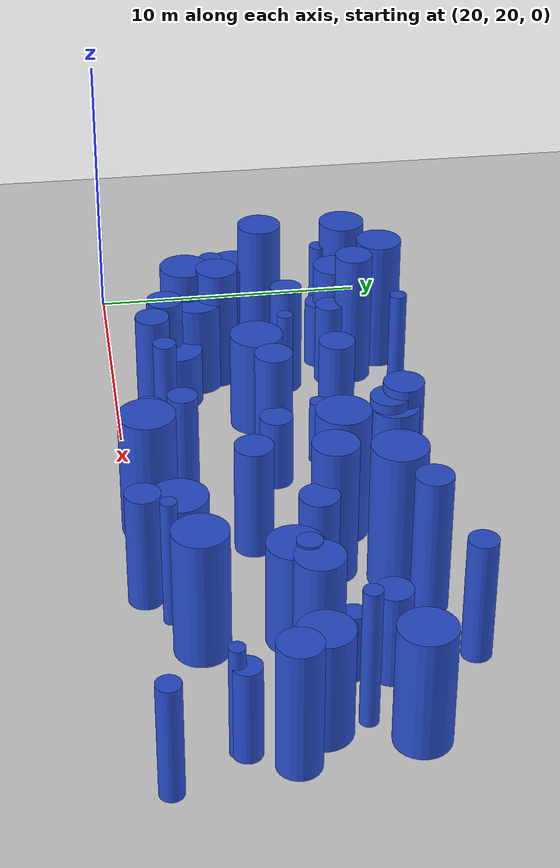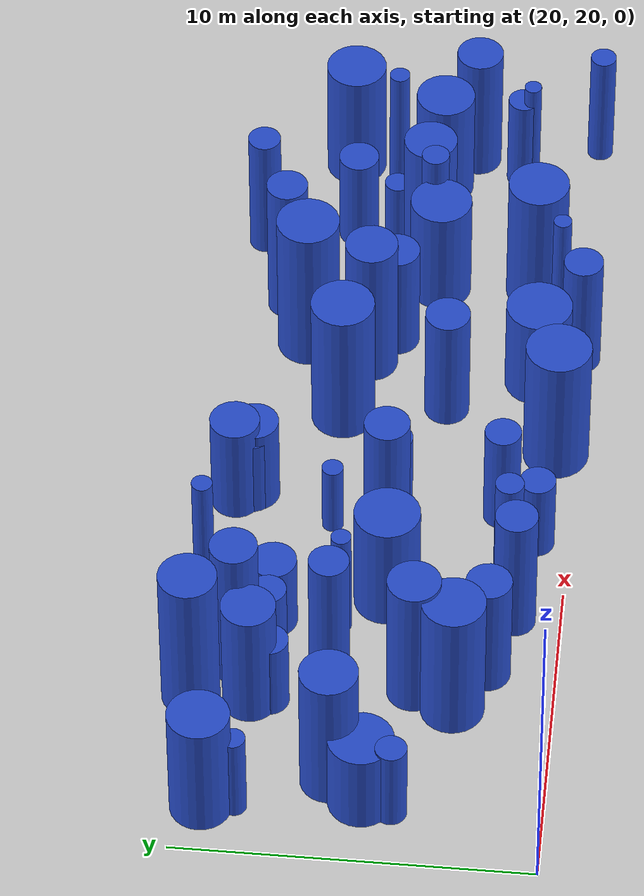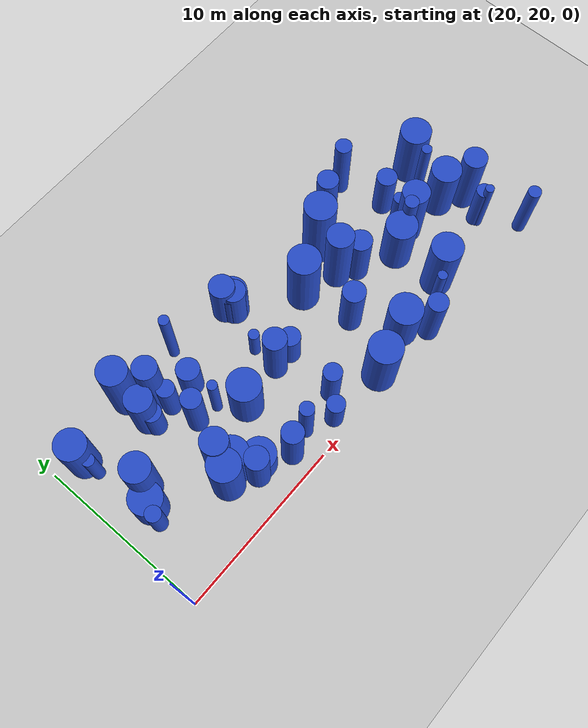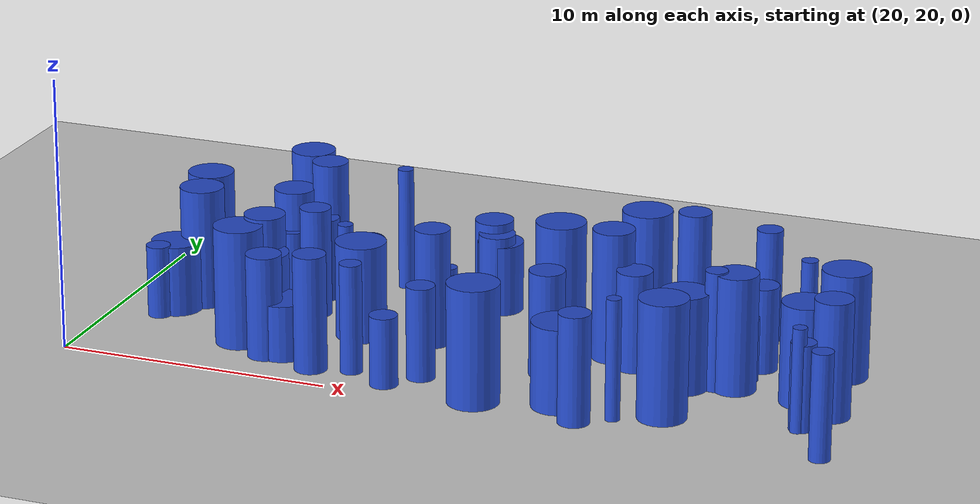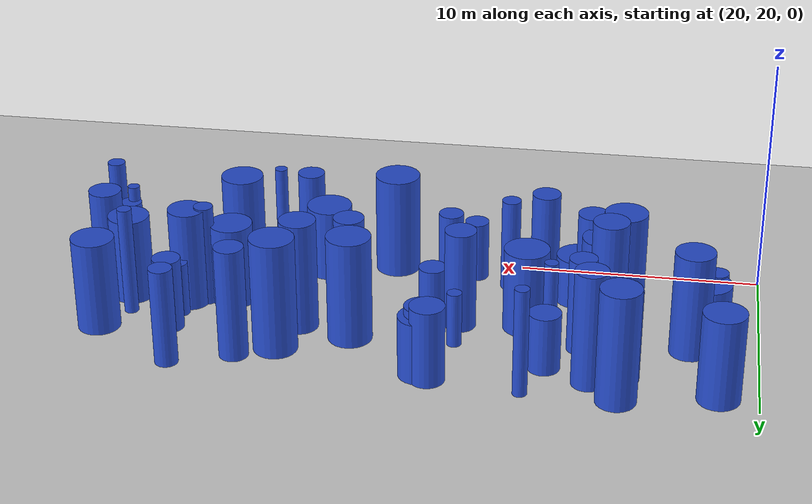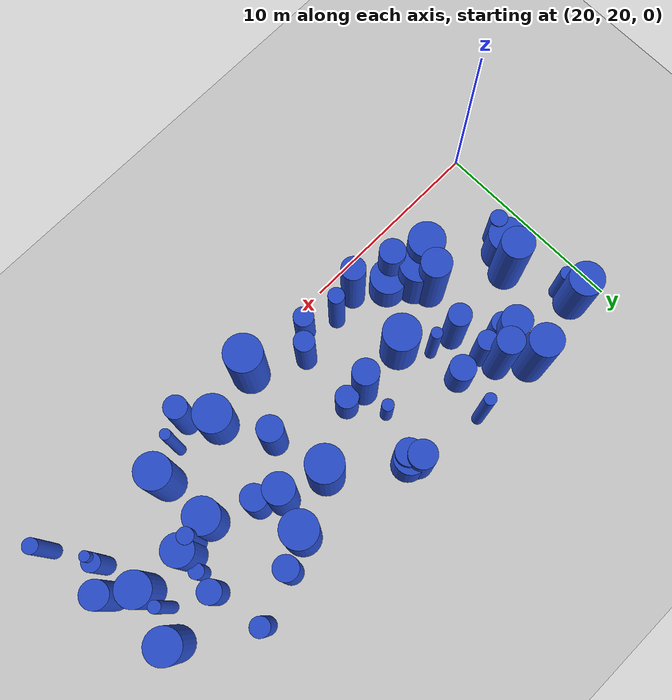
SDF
<sdf version="1.6">
 <world name="default">
  <model name="ground_plane">
   <static>1</static>
   <link name="link">
    <collision name="collision">
     <geometry><plane><normal>0 0 1</normal><size>100 100</size></plane></geometry>
     <surface><friction><ode><mu>100</mu><mu2>50</mu2></ode></friction></surface>
    </collision>
    <visual name="visual">
     <cast_shadows>0</cast_shadows>
     <geometry><plane><normal>0 0 1</normal><size>100 100</size></plane></geometry>
     <material>
      <script><uri>file://media/materials/scripts/gazebo.material</uri><name>Gazebo/Grey</name></script>
     </material>
    </visual>
   </link>
  </model>
  <model name="15">
   <static>0</static>
   <link name="link">
    <inertial>
     <mass>2</mass>
     <inertia><ixx>2.90388</ixx><ixy>0</ixy><ixz>0</ixz><iyy>2.90388</iyy><iyz>0</iyz><izz>0.578559</izz></inertia>
    </inertial>
    <collision name="collision">
     <geometry><cylinder><length>3.96076</length><radius>0.76063</radius></cylinder></geometry>
     <surface><contact><collide_without_contact>1</collide_without_contact></contact></surface>
    </collision>
    <visual name="visual">
     <geometry><cylinder><length>3.96076</length><radius>0.76063</radius></cylinder></geometry>
     <material>
      <script><uri>file://media/materials/scripts/gazebo.material</uri><name>Gazebo/Blue</name></script>
     </material>
    </visual>
    <gravity>0</gravity>
   </link>
   <pose>25.3755 28.3182 1.98038 0 -0 0</pose>
  </model>
  <model name="23">
   <static>0</static>
   <link name="link">
    <inertial>
     <mass>2</mass>
     <inertia><ixx>2.06721</ixx><ixy>0</ixy><ixz>0</ixz><iyy>2.06721</iyy><iyz>0</iyz><izz>0.898479</izz></inertia>
    </inertial>
    <collision name="collision">
     <geometry><cylinder><length>3.11573</length><radius>0.947881</radius></cylinder></geometry>
     <surface><contact><collide_without_contact>1</collide_without_contact></contact></surface>
    </collision>
    <visual name="visual">
     <geometry><cylinder><length>3.11573</length><radius>0.947881</radius></cylinder></geometry>
     <material>
      <script><uri>file://media/materials/scripts/gazebo.material</uri><name>Gazebo/Blue</name></script>
     </material>
    </visual>
    <gravity>0</gravity>
   </link>
   <pose>38.1808 21.3346 1.55787 0 -0 0</pose>
  </model>
  <model name="30">
   <static>0</static>
   <link name="link">
    <inertial>
     <mass>2</mass>
     <inertia><ixx>2.57065</ixx><ixy>0</ixy><ixz>0</ixz><iyy>2.57065</iyy><iyz>0</iyz><izz>0.140555</izz></inertia>
    </inertial>
    <collision name="collision">
     <geometry><cylinder><length>3.87327</length><radius>0.374907</radius></cylinder></geometry>
     <surface><contact><collide_without_contact>1</collide_without_contact></contact></surface>
    </collision>
    <visual name="visual">
     <geometry><cylinder><length>3.87327</length><radius>0.374907</radius></cylinder></geometry>
     <material>
      <script><uri>file://media/materials/scripts/gazebo.material</uri><name>Gazebo/Blue</name></script>
     </material>
    </visual>
    <gravity>0</gravity>
   </link>
   <pose>47.8314 20.152 1.93664 0 -0 0</pose>
  </model>
  <model name="33">
   <static>0</static>
   <link name="link">
    <inertial>
     <mass>2</mass>
     <inertia><ixx>3.30687</ixx><ixy>0</ixy><ixz>0</ixz><iyy>3.30687</iyy><iyz>0</iyz><izz>0.069358</izz></inertia>
    </inertial>
    <collision name="collision">
     <geometry><cylinder><length>4.43093</length><radius>0.263359</radius></cylinder></geometry>
     <surface><contact><collide_without_contact>1</collide_without_contact></contact></surface>
    </collision>
    <visual name="visual">
     <geometry><cylinder><length>4.43093</length><radius>0.263359</radius></cylinder></geometry>
     <material>
      <script><uri>file://media/materials/scripts/gazebo.material</uri><name>Gazebo/Blue</name></script>
     </material>
    </visual>
    <gravity>0</gravity>
   </link>
   <pose>40.3358 20.8522 2.21546 0 -0 0</pose>
  </model>
  <model name="44">
   <static>0</static>
   <link name="link">
    <inertial>
     <mass>2</mass>
     <inertia><ixx>1.7448</ixx><ixy>0</ixy><ixz>0</ixz><iyy>1.7448</iyy><iyz>0</iyz><izz>0.25816</izz></inertia>
    </inertial>
    <collision name="collision">
     <geometry><cylinder><length>3.11357</length><radius>0.508094</radius></cylinder></geometry>
     <surface><contact><collide_without_contact>1</collide_without_contact></contact></surface>
    </collision>
    <visual name="visual">
     <geometry><cylinder><length>3.11357</length><radius>0.508094</radius></cylinder></geometry>
     <material>
      <script><uri>file://media/materials/scripts/gazebo.material</uri><name>Gazebo/Blue</name></script>
     </material>
    </visual>
    <gravity>0</gravity>
   </link>
   <pose>26.7685 27.9284 1.55679 0 -0 0</pose>
  </model>
  <model name="80">
   <static>0</static>
   <link name="link">
    <inertial>
     <mass>2</mass>
     <inertia><ixx>4.09311</ixx><ixy>0</ixy><ixz>0</ixz><iyy>4.09311</iyy><iyz>0</iyz><izz>0.357033</izz></inertia>
    </inertial>
    <collision name="collision">
     <geometry><cylinder><length>4.8464</length><radius>0.597523</radius></cylinder></geometry>
     <surface><contact><collide_without_contact>1</collide_without_contact></contact></surface>
    </collision>
    <visual name="visual">
     <geometry><cylinder><length>4.8464</length><radius>0.597523</radius></cylinder></geometry>
     <material>
      <script><uri>file://media/materials/scripts/gazebo.material</uri><name>Gazebo/Blue</name></script>
     </material>
    </visual>
    <gravity>0</gravity>
   </link>
   <pose>40.6499 28.8101 2.4232 0 -0 0</pose>
  </model>
  <model name="81">
   <static>0</static>
   <link name="link">
    <inertial>
     <mass>2</mass>
     <inertia><ixx>3.58</ixx><ixy>0</ixy><ixz>0</ixz><iyy>3.58</iyy><iyz>0</iyz><izz>0.775805</izz></inertia>
    </inertial>
    <collision name="collision">
     <geometry><cylinder><length>4.37637</length><radius>0.880798</radius></cylinder></geometry>
     <surface><contact><collide_without_contact>1</collide_without_contact></contact></surface>
    </collision>
    <visual name="visual">
     <geometry><cylinder><length>4.37637</length><radius>0.880798</radius></cylinder></geometry>
     <material>
      <script><uri>file://media/materials/scripts/gazebo.material</uri><name>Gazebo/Blue</name></script>
     </material>
    </visual>
    <gravity>0</gravity>
   </link>
   <pose>41.8431 21.6383 2.18818 0 -0 0</pose>
  </model>
  <model name="82">
   <static>0</static>
   <link name="link">
    <inertial>
     <mass>2</mass>
     <inertia><ixx>3.70102</ixx><ixy>0</ixy><ixz>0</ixz><iyy>3.70102</iyy><iyz>0</iyz><izz>0.657066</izz></inertia>
    </inertial>
    <collision name="collision">
     <geometry><cylinder><length>4.49832</length><radius>0.810596</radius></cylinder></geometry>
     <surface><contact><collide_without_contact>1</collide_without_contact></contact></surface>
    </collision>
    <visual name="visual">
     <geometry><cylinder><length>4.49832</length><radius>0.810596</radius></cylinder></geometry>
     <material>
      <script><uri>file://media/materials/scripts/gazebo.material</uri><name>Gazebo/Blue</name></script>
     </material>
    </visual>
    <gravity>0</gravity>
   </link>
   <pose>22.7638 25.8733 2.24916 0 -0 0</pose>
  </model>
  <model name="83">
   <static>0</static>
   <link name="link">
    <inertial>
     <mass>2</mass>
     <inertia><ixx>1.72502</ixx><ixy>0</ixy><ixz>0</ixz><iyy>1.72502</iyy><iyz>0</iyz><izz>0.220377</izz></inertia>
    </inertial>
    <collision name="collision">
     <geometry><cylinder><length>3.11272</length><radius>0.469444</radius></cylinder></geometry>
     <surface><contact><collide_without_contact>1</collide_without_contact></contact></surface>
    </collision>
    <visual name="visual">
     <geometry><cylinder><length>3.11272</length><radius>0.469444</radius></cylinder></geometry>
     <material>
      <script><uri>file://media/materials/scripts/gazebo.material</uri><name>Gazebo/Blue</name></script>
     </material>
    </visual>
    <gravity>0</gravity>
   </link>
   <pose>26.6132 23.1771 1.55636 0 -0 0</pose>
  </model>
  <model name="111">
   <static>0</static>
   <link name="link">
    <inertial>
     <mass>2</mass>
     <inertia><ixx>1.20961</ixx><ixy>0</ixy><ixz>0</ixz><iyy>1.20961</iyy><iyz>0</iyz><izz>0.298069</izz></inertia>
    </inertial>
    <collision name="collision">
     <geometry><cylinder><length>2.52259</length><radius>0.545957</radius></cylinder></geometry>
     <surface><contact><collide_without_contact>1</collide_without_contact></contact></surface>
    </collision>
    <visual name="visual">
     <geometry><cylinder><length>2.52259</length><radius>0.545957</radius></cylinder></geometry>
     <material>
      <script><uri>file://media/materials/scripts/gazebo.material</uri><name>Gazebo/Blue</name></script>
     </material>
    </visual>
    <gravity>0</gravity>
   </link>
   <pose>25.4669 27.7851 1.2613 0 -0 0</pose>
  </model>
  <model name="113">
   <static>0</static>
   <link name="link">
    <inertial>
     <mass>2</mass>
     <inertia><ixx>3.71494</ixx><ixy>0</ixy><ixz>0</ixz><iyy>3.71494</iyy><iyz>0</iyz><izz>0.086821</izz></inertia>
    </inertial>
    <collision name="collision">
     <geometry><cylinder><length>4.69352</length><radius>0.294654</radius></cylinder></geometry>
     <surface><contact><collide_without_contact>1</collide_without_contact></contact></surface>
    </collision>
    <visual name="visual">
     <geometry><cylinder><length>4.69352</length><radius>0.294654</radius></cylinder></geometry>
     <material>
      <script><uri>file://media/materials/scripts/gazebo.material</uri><name>Gazebo/Blue</name></script>
     </material>
    </visual>
    <gravity>0</gravity>
   </link>
   <pose>45.6716 26.0067 2.34676 0 -0 0</pose>
  </model>
  <model name="116">
   <static>0</static>
   <link name="link">
    <inertial>
     <mass>2</mass>
     <inertia><ixx>3.66438</ixx><ixy>0</ixy><ixz>0</ixz><iyy>3.66438</iyy><iyz>0</iyz><izz>0.791449</izz></inertia>
    </inertial>
    <collision name="collision">
     <geometry><cylinder><length>4.42853</length><radius>0.889634</radius></cylinder></geometry>
     <surface><contact><collide_without_contact>1</collide_without_contact></contact></surface>
    </collision>
    <visual name="visual">
     <geometry><cylinder><length>4.42853</length><radius>0.889634</radius></cylinder></geometry>
     <material>
      <script><uri>file://media/materials/scripts/gazebo.material</uri><name>Gazebo/Blue</name></script>
     </material>
    </visual>
    <gravity>0</gravity>
   </link>
   <pose>25.6012 22.7655 2.21427 0 -0 0</pose>
  </model>
  <model name="126">
   <static>0</static>
   <link name="link">
    <inertial>
     <mass>2</mass>
     <inertia><ixx>2.36095</ixx><ixy>0</ixy><ixz>0</ixz><iyy>2.36095</iyy><iyz>0</iyz><izz>0.846697</izz></inertia>
    </inertial>
    <collision name="collision">
     <geometry><cylinder><length>3.40963</length><radius>0.920162</radius></cylinder></geometry>
     <surface><contact><collide_without_contact>1</collide_without_contact></contact></surface>
    </collision>
    <visual name="visual">
     <geometry><cylinder><length>3.40963</length><radius>0.920162</radius></cylinder></geometry>
     <material>
      <script><uri>file://media/materials/scripts/gazebo.material</uri><name>Gazebo/Blue</name></script>
     </material>
    </visual>
    <gravity>0</gravity>
   </link>
   <pose>26.4193 23.1085 1.70482 0 -0 0</pose>
  </model>
  <model name="133">
   <static>0</static>
   <link name="link">
    <inertial>
     <mass>2</mass>
     <inertia><ixx>1.49924</ixx><ixy>0</ixy><ixz>0</ixz><iyy>1.49924</iyy><iyz>0</iyz><izz>0.70664</izz></inertia>
    </inertial>
    <collision name="collision">
     <geometry><cylinder><length>2.62212</length><radius>0.840619</radius></cylinder></geometry>
     <surface><contact><collide_without_contact>1</collide_without_contact></contact></surface>
    </collision>
    <visual name="visual">
     <geometry><cylinder><length>2.62212</length><radius>0.840619</radius></cylinder></geometry>
     <material>
      <script><uri>file://media/materials/scripts/gazebo.material</uri><name>Gazebo/Blue</name></script>
     </material>
    </visual>
    <gravity>0</gravity>
   </link>
   <pose>33.1535 29.158 1.31106 0 -0 0</pose>
  </model>
  <model name="135">
   <static>0</static>
   <link name="link">
    <inertial>
     <mass>2</mass>
     <inertia>
      <ixx>0.964582</ixx>
      <ixy>0</ixy>
      <ixz>0</ixz>
      <iyy>0.964582</iyy>
      <iyz>0</iyz>
      <izz>0.0928418</izz>
     </inertia>
    </inertial>
    <collision name="collision">
     <geometry><cylinder><length>2.34712</length><radius>0.304699</radius></cylinder></geometry>
     <surface><contact><collide_without_contact>1</collide_without_contact></contact></surface>
    </collision>
    <visual name="visual">
     <geometry><cylinder><length>2.34712</length><radius>0.304699</radius></cylinder></geometry>
     <material>
      <script><uri>file://media/materials/scripts/gazebo.material</uri><name>Gazebo/Blue</name></script>
     </material>
    </visual>
    <gravity>0</gravity>
   </link>
   <pose>32.105 26.6815 1.17356 0 -0 0</pose>
  </model>
  <model name="140">
   <static>0</static>
   <link name="link">
    <inertial>
     <mass>2</mass>
     <inertia><ixx>3.34818</ixx><ixy>0</ixy><ixz>0</ixz><iyy>3.34818</iyy><iyz>0</iyz><izz>0.460227</izz></inertia>
    </inertial>
    <collision name="collision">
     <geometry><cylinder><length>4.32532</length><radius>0.6784</radius></cylinder></geometry>
     <surface><contact><collide_without_contact>1</collide_without_contact></contact></surface>
    </collision>
    <visual name="visual">
     <geometry><cylinder><length>4.32532</length><radius>0.6784</radius></cylinder></geometry>
     <material>
      <script><uri>file://media/materials/scripts/gazebo.material</uri><name>Gazebo/Blue</name></script>
     </material>
    </visual>
    <gravity>0</gravity>
   </link>
   <pose>47.1941 23.7608 2.16266 0 -0 0</pose>
  </model>
  <model name="151">
   <static>0</static>
   <link name="link">
    <inertial>
     <mass>2</mass>
     <inertia>
      <ixx>0.742091</ixx>
      <ixy>0</ixy>
      <ixz>0</ixz>
      <iyy>0.742091</iyy>
      <iyz>0</iyz>
      <izz>0.0764885</izz>
     </inertia>
    </inertial>
    <collision name="collision">
     <geometry><cylinder><length>2.05501</length><radius>0.276566</radius></cylinder></geometry>
     <surface><contact><collide_without_contact>1</collide_without_contact></contact></surface>
    </collision>
    <visual name="visual">
     <geometry><cylinder><length>2.05501</length><radius>0.276566</radius></cylinder></geometry>
     <material>
      <script><uri>file://media/materials/scripts/gazebo.material</uri><name>Gazebo/Blue</name></script>
     </material>
    </visual>
    <gravity>0</gravity>
   </link>
   <pose>25.7522 22.968 1.02751 0 -0 0</pose>
  </model>
  <model name="160">
   <static>0</static>
   <link name="link">
    <inertial>
     <mass>2</mass>
     <inertia><ixx>2.4096</ixx><ixy>0</ixy><ixz>0</ixz><iyy>2.4096</iyy><iyz>0</iyz><izz>0.0632609</izz></inertia>
    </inertial>
    <collision name="collision">
     <geometry><cylinder><length>3.77727</length><radius>0.251517</radius></cylinder></geometry>
     <surface><contact><collide_without_contact>1</collide_without_contact></contact></surface>
    </collision>
    <visual name="visual">
     <geometry><cylinder><length>3.77727</length><radius>0.251517</radius></cylinder></geometry>
     <material>
      <script><uri>file://media/materials/scripts/gazebo.material</uri><name>Gazebo/Blue</name></script>
     </material>
    </visual>
    <gravity>0</gravity>
   </link>
   <pose>46.4749 22.1377 1.88864 0 -0 0</pose>
  </model>
  <model name="166">
   <static>0</static>
   <link name="link">
    <inertial>
     <mass>2</mass>
     <inertia><ixx>2.66638</ixx><ixy>0</ixy><ixz>0</ixz><iyy>2.66638</iyy><iyz>0</iyz><izz>0.412659</izz></inertia>
    </inertial>
    <collision name="collision">
     <geometry><cylinder><length>3.84192</length><radius>0.642385</radius></cylinder></geometry>
     <surface><contact><collide_without_contact>1</collide_without_contact></contact></surface>
    </collision>
    <visual name="visual">
     <geometry><cylinder><length>3.84192</length><radius>0.642385</radius></cylinder></geometry>
     <material>
      <script><uri>file://media/materials/scripts/gazebo.material</uri><name>Gazebo/Blue</name></script>
     </material>
    </visual>
    <gravity>0</gravity>
   </link>
   <pose>26.9616 21.9047 1.92096 0 -0 0</pose>
  </model>
  <model name="169">
   <static>0</static>
   <link name="link">
    <inertial>
     <mass>2</mass>
     <inertia><ixx>3.08564</ixx><ixy>0</ixy><ixz>0</ixz><iyy>3.08564</iyy><iyz>0</iyz><izz>0.768449</izz></inertia>
    </inertial>
    <collision name="collision">
     <geometry><cylinder><length>4.02598</length><radius>0.876612</radius></cylinder></geometry>
     <surface><contact><collide_without_contact>1</collide_without_contact></contact></surface>
    </collision>
    <visual name="visual">
     <geometry><cylinder><length>4.02598</length><radius>0.876612</radius></cylinder></geometry>
     <material>
      <script><uri>file://media/materials/scripts/gazebo.material</uri><name>Gazebo/Blue</name></script>
     </material>
    </visual>
    <gravity>0</gravity>
   </link>
   <pose>46.6286 27.3684 2.01299 0 -0 0</pose>
  </model>
  <model name="170">
   <static>0</static>
   <link name="link">
    <inertial>
     <mass>2</mass>
     <inertia><ixx>3.0652</ixx><ixy>0</ixy><ixz>0</ixz><iyy>3.0652</iyy><iyz>0</iyz><izz>0.224651</izz></inertia>
    </inertial>
    <collision name="collision">
     <geometry><cylinder><length>4.20919</length><radius>0.473974</radius></cylinder></geometry>
     <surface><contact><collide_without_contact>1</collide_without_contact></contact></surface>
    </collision>
    <visual name="visual">
     <geometry><cylinder><length>4.20919</length><radius>0.473974</radius></cylinder></geometry>
     <material>
      <script><uri>file://media/materials/scripts/gazebo.material</uri><name>Gazebo/Blue</name></script>
     </material>
    </visual>
    <gravity>0</gravity>
   </link>
   <pose>43.1509 29.7343 2.10459 0 -0 0</pose>
  </model>
  <model name="181">
   <static>0</static>
   <link name="link">
    <inertial>
     <mass>2</mass>
     <inertia><ixx>1.14552</ixx><ixy>0</ixy><ixz>0</ixz><iyy>1.14552</iyy><iyz>0</iyz><izz>0.824375</izz></inertia>
    </inertial>
    <collision name="collision">
     <geometry><cylinder><length>2.09762</length><radius>0.907951</radius></cylinder></geometry>
     <surface><contact><collide_without_contact>1</collide_without_contact></contact></surface>
    </collision>
    <visual name="visual">
     <geometry><cylinder><length>2.09762</length><radius>0.907951</radius></cylinder></geometry>
     <material>
      <script><uri>file://media/materials/scripts/gazebo.material</uri><name>Gazebo/Blue</name></script>
     </material>
    </visual>
    <gravity>0</gravity>
   </link>
   <pose>27.5067 22.2685 1.04881 0 -0 0</pose>
  </model>
  <model name="182">
   <static>0</static>
   <link name="link">
    <inertial>
     <mass>2</mass>
     <inertia><ixx>2.11662</ixx><ixy>0</ixy><ixz>0</ixz><iyy>2.11662</iyy><iyz>0</iyz><izz>0.267253</izz></inertia>
    </inertial>
    <collision name="collision">
     <geometry><cylinder><length>3.44934</length><radius>0.516965</radius></cylinder></geometry>
     <surface><contact><collide_without_contact>1</collide_without_contact></contact></surface>
    </collision>
    <visual name="visual">
     <geometry><cylinder><length>3.44934</length><radius>0.516965</radius></cylinder></geometry>
     <material>
      <script><uri>file://media/materials/scripts/gazebo.material</uri><name>Gazebo/Blue</name></script>
     </material>
    </visual>
    <gravity>0</gravity>
   </link>
   <pose>32.8767 21.9708 1.72467 0 -0 0</pose>
  </model>
  <model name="183">
   <static>0</static>
   <link name="link">
    <inertial>
     <mass>2</mass>
     <inertia><ixx>1.76238</ixx><ixy>0</ixy><ixz>0</ixz><iyy>1.76238</iyy><iyz>0</iyz><izz>0.200657</izz></inertia>
    </inertial>
    <collision name="collision">
     <geometry><cylinder><length>3.1579</length><radius>0.447948</radius></cylinder></geometry>
     <surface><contact><collide_without_contact>1</collide_without_contact></contact></surface>
    </collision>
    <visual name="visual">
     <geometry><cylinder><length>3.1579</length><radius>0.447948</radius></cylinder></geometry>
     <material>
      <script><uri>file://media/materials/scripts/gazebo.material</uri><name>Gazebo/Blue</name></script>
     </material>
    </visual>
    <gravity>0</gravity>
   </link>
   <pose>46.5479 22.4078 1.57895 0 -0 0</pose>
  </model>
  <model name="186">
   <static>0</static>
   <link name="link">
    <inertial>
     <mass>2</mass>
     <inertia><ixx>1.41784</ixx><ixy>0</ixy><ixz>0</ixz><iyy>1.41784</iyy><iyz>0</iyz><izz>0.118044</izz></inertia>
    </inertial>
    <collision name="collision">
     <geometry><cylinder><length>2.85533</length><radius>0.343576</radius></cylinder></geometry>
     <surface><contact><collide_without_contact>1</collide_without_contact></contact></surface>
    </collision>
    <visual name="visual">
     <geometry><cylinder><length>2.85533</length><radius>0.343576</radius></cylinder></geometry>
     <material>
      <script><uri>file://media/materials/scripts/gazebo.material</uri><name>Gazebo/Blue</name></script>
     </material>
    </visual>
    <gravity>0</gravity>
   </link>
   <pose>21.624 28.346 1.42766 0 -0 0</pose>
  </model>
  <model name="190">
   <static>0</static>
   <link name="link">
    <inertial>
     <mass>2</mass>
     <inertia><ixx>2.65867</ixx><ixy>0</ixy><ixz>0</ixz><iyy>2.65867</iyy><iyz>0</iyz><izz>0.73167</izz></inertia>
    </inertial>
    <collision name="collision">
     <geometry><cylinder><length>3.70904</length><radius>0.855377</radius></cylinder></geometry>
     <surface><contact><collide_without_contact>1</collide_without_contact></contact></surface>
    </collision>
    <visual name="visual">
     <geometry><cylinder><length>3.70904</length><radius>0.855377</radius></cylinder></geometry>
     <material>
      <script><uri>file://media/materials/scripts/gazebo.material</uri><name>Gazebo/Blue</name></script>
     </material>
    </visual>
    <gravity>0</gravity>
   </link>
   <pose>45.9598 24.6715 1.85452 0 -0 0</pose>
  </model>
  <model name="209">
   <static>0</static>
   <link name="link">
    <inertial>
     <mass>2</mass>
     <inertia><ixx>3.73086</ixx><ixy>0</ixy><ixz>0</ixz><iyy>3.73086</iyy><iyz>0</iyz><izz>0.558149</izz></inertia>
    </inertial>
    <collision name="collision">
     <geometry><cylinder><length>4.5509</length><radius>0.747093</radius></cylinder></geometry>
     <surface><contact><collide_without_contact>1</collide_without_contact></contact></surface>
    </collision>
    <visual name="visual">
     <geometry><cylinder><length>4.5509</length><radius>0.747093</radius></cylinder></geometry>
     <material>
      <script><uri>file://media/materials/scripts/gazebo.material</uri><name>Gazebo/Blue</name></script>
     </material>
    </visual>
    <gravity>0</gravity>
   </link>
   <pose>26.1448 23.8823 2.27545 0 -0 0</pose>
  </model>
  <model name="221">
   <static>0</static>
   <link name="link">
    <inertial>
     <mass>2</mass>
     <inertia>
      <ixx>3.59833</ixx>
      <ixy>0</ixy>
      <ixz>0</ixz>
      <iyy>3.59833</iyy>
      <iyz>0</iyz>
      <izz>0.0862333</izz>
     </inertia>
    </inertial>
    <collision name="collision">
     <geometry><cylinder><length>4.61858</length><radius>0.293655</radius></cylinder></geometry>
     <surface><contact><collide_without_contact>1</collide_without_contact></contact></surface>
    </collision>
    <visual name="visual">
     <geometry><cylinder><length>4.61858</length><radius>0.293655</radius></cylinder></geometry>
     <material>
      <script><uri>file://media/materials/scripts/gazebo.material</uri><name>Gazebo/Blue</name></script>
     </material>
    </visual>
    <gravity>0</gravity>
   </link>
   <pose>29.1156 29.9785 2.30929 0 -0 0</pose>
  </model>
  <model name="223">
   <static>0</static>
   <link name="link">
    <inertial>
     <mass>2</mass>
     <inertia><ixx>2.43161</ixx><ixy>0</ixy><ixz>0</ixz><iyy>2.43161</iyy><iyz>0</iyz><izz>0.414672</izz></inertia>
    </inertial>
    <collision name="collision">
     <geometry><cylinder><length>3.65317</length><radius>0.643951</radius></cylinder></geometry>
     <surface><contact><collide_without_contact>1</collide_without_contact></contact></surface>
    </collision>
    <visual name="visual">
     <geometry><cylinder><length>3.65317</length><radius>0.643951</radius></cylinder></geometry>
     <material>
      <script><uri>file://media/materials/scripts/gazebo.material</uri><name>Gazebo/Blue</name></script>
     </material>
    </visual>
    <gravity>0</gravity>
   </link>
   <pose>39.5123 25.5214 1.82658 0 -0 0</pose>
  </model>
  <model name="225">
   <static>0</static>
   <link name="link">
    <inertial>
     <mass>2</mass>
     <inertia><ixx>1.70553</ixx><ixy>0</ixy><ixz>0</ixz><iyy>1.70553</iyy><iyz>0</iyz><izz>0.458837</izz></inertia>
    </inertial>
    <collision name="collision">
     <geometry><cylinder><length>2.97602</length><radius>0.677375</radius></cylinder></geometry>
     <surface><contact><collide_without_contact>1</collide_without_contact></contact></surface>
    </collision>
    <visual name="visual">
     <geometry><cylinder><length>2.97602</length><radius>0.677375</radius></cylinder></geometry>
     <material>
      <script><uri>file://media/materials/scripts/gazebo.material</uri><name>Gazebo/Blue</name></script>
     </material>
    </visual>
    <gravity>0</gravity>
   </link>
   <pose>33.0921 28.9664 1.48801 0 -0 0</pose>
  </model>
  <model name="235">
   <static>0</static>
   <link name="link">
    <inertial>
     <mass>2</mass>
     <inertia><ixx>1.82247</ixx><ixy>0</ixy><ixz>0</ixz><iyy>1.82247</iyy><iyz>0</iyz><izz>0.337117</izz></inertia>
    </inertial>
    <collision name="collision">
     <geometry><cylinder><length>3.15015</length><radius>0.580618</radius></cylinder></geometry>
     <surface><contact><collide_without_contact>1</collide_without_contact></contact></surface>
    </collision>
    <visual name="visual">
     <geometry><cylinder><length>3.15015</length><radius>0.580618</radius></cylinder></geometry>
     <material>
      <script><uri>file://media/materials/scripts/gazebo.material</uri><name>Gazebo/Blue</name></script>
     </material>
    </visual>
    <gravity>0</gravity>
   </link>
   <pose>43.7431 27.0287 1.57508 0 -0 0</pose>
  </model>
  <model name="246">
   <static>0</static>
   <link name="link">
    <inertial>
     <mass>2</mass>
     <inertia>
      <ixx>2.30914</ixx>
      <ixy>0</ixy>
      <ixz>0</ixz>
      <iyy>2.30914</iyy>
      <iyz>0</iyz>
      <izz>0.0802762</izz>
     </inertia>
    </inertial>
    <collision name="collision">
     <geometry><cylinder><length>3.68972</length><radius>0.283331</radius></cylinder></geometry>
     <surface><contact><collide_without_contact>1</collide_without_contact></contact></surface>
    </collision>
    <visual name="visual">
     <geometry><cylinder><length>3.68972</length><radius>0.283331</radius></cylinder></geometry>
     <material>
      <script><uri>file://media/materials/scripts/gazebo.material</uri><name>Gazebo/Blue</name></script>
     </material>
    </visual>
    <gravity>0</gravity>
   </link>
   <pose>28.3359 26.0785 1.84486 0 -0 0</pose>
  </model>
  <model name="255">
   <static>0</static>
   <link name="link">
    <inertial>
     <mass>2</mass>
     <inertia><ixx>1.58011</ixx><ixy>0</ixy><ixz>0</ixz><iyy>1.58011</iyy><iyz>0</iyz><izz>0.838259</izz></inertia>
    </inertial>
    <collision name="collision">
     <geometry><cylinder><length>2.6393</length><radius>0.915565</radius></cylinder></geometry>
     <surface><contact><collide_without_contact>1</collide_without_contact></contact></surface>
    </collision>
    <visual name="visual">
     <geometry><cylinder><length>2.6393</length><radius>0.915565</radius></cylinder></geometry>
     <material>
      <script><uri>file://media/materials/scripts/gazebo.material</uri><name>Gazebo/Blue</name></script>
     </material>
    </visual>
    <gravity>0</gravity>
   </link>
   <pose>22.1102 24.9549 1.31965 0 -0 0</pose>
  </model>
  <model name="259">
   <static>0</static>
   <link name="link">
    <inertial>
     <mass>2</mass>
     <inertia><ixx>3.95999</ixx><ixy>0</ixy><ixz>0</ixz><iyy>3.95999</iyy><iyz>0</iyz><izz>0.828912</izz></inertia>
    </inertial>
    <collision name="collision">
     <geometry><cylinder><length>4.61229</length><radius>0.910446</radius></cylinder></geometry>
     <surface><contact><collide_without_contact>1</collide_without_contact></contact></surface>
    </collision>
    <visual name="visual">
     <geometry><cylinder><length>4.61229</length><radius>0.910446</radius></cylinder></geometry>
     <material>
      <script><uri>file://media/materials/scripts/gazebo.material</uri><name>Gazebo/Blue</name></script>
     </material>
    </visual>
    <gravity>0</gravity>
   </link>
   <pose>36.3211 26.7951 2.30614 0 -0 0</pose>
  </model>
  <model name="274">
   <static>0</static>
   <link name="link">
    <inertial>
     <mass>2</mass>
     <inertia><ixx>1.31479</ixx><ixy>0</ixy><ixz>0</ixz><iyy>1.31479</iyy><iyz>0</iyz><izz>0.192887</izz></inertia>
    </inertial>
    <collision name="collision">
     <geometry><cylinder><length>2.70371</length><radius>0.439189</radius></cylinder></geometry>
     <surface><contact><collide_without_contact>1</collide_without_contact></contact></surface>
    </collision>
    <visual name="visual">
     <geometry><cylinder><length>2.70371</length><radius>0.439189</radius></cylinder></geometry>
     <material>
      <script><uri>file://media/materials/scripts/gazebo.material</uri><name>Gazebo/Blue</name></script>
     </material>
    </visual>
    <gravity>0</gravity>
   </link>
   <pose>21.7932 24.1117 1.35186 0 -0 0</pose>
  </model>
  <model name="280">
   <static>0</static>
   <link name="link">
    <inertial>
     <mass>2</mass>
     <inertia><ixx>4.37936</ixx><ixy>0</ixy><ixz>0</ixz><iyy>4.37936</iyy><iyz>0</iyz><izz>0.666872</izz></inertia>
    </inertial>
    <collision name="collision">
     <geometry><cylinder><length>4.92702</length><radius>0.816622</radius></cylinder></geometry>
     <surface><contact><collide_without_contact>1</collide_without_contact></contact></surface>
    </collision>
    <visual name="visual">
     <geometry><cylinder><length>4.92702</length><radius>0.816622</radius></cylinder></geometry>
     <material>
      <script><uri>file://media/materials/scripts/gazebo.material</uri><name>Gazebo/Blue</name></script>
     </material>
    </visual>
    <gravity>0</gravity>
   </link>
   <pose>25.4409 29.9573 2.46351 0 -0 0</pose>
  </model>
  <model name="283">
   <static>0</static>
   <link name="link">
    <inertial>
     <mass>2</mass>
     <inertia><ixx>2.95379</ixx><ixy>0</ixy><ixz>0</ixz><iyy>2.95379</iyy><iyz>0</iyz><izz>0.322563</izz></inertia>
    </inertial>
    <collision name="collision">
     <geometry><cylinder><length>4.09329</length><radius>0.567947</radius></cylinder></geometry>
     <surface><contact><collide_without_contact>1</collide_without_contact></contact></surface>
    </collision>
    <visual name="visual">
     <geometry><cylinder><length>4.09329</length><radius>0.567947</radius></cylinder></geometry>
     <material>
      <script><uri>file://media/materials/scripts/gazebo.material</uri><name>Gazebo/Blue</name></script>
     </material>
    </visual>
    <gravity>0</gravity>
   </link>
   <pose>27.0683 26.2912 2.04665 0 -0 0</pose>
  </model>
  <model name="304">
   <static>0</static>
   <link name="link">
    <inertial>
     <mass>2</mass>
     <inertia><ixx>2.82761</ixx><ixy>0</ixy><ixz>0</ixz><iyy>2.82761</iyy><iyz>0</iyz><izz>0.324547</izz></inertia>
    </inertial>
    <collision name="collision">
     <geometry><cylinder><length>3.999</length><radius>0.56969</radius></cylinder></geometry>
     <surface><contact><collide_without_contact>1</collide_without_contact></contact></surface>
    </collision>
    <visual name="visual">
     <geometry><cylinder><length>3.999</length><radius>0.56969</radius></cylinder></geometry>
     <material>
      <script><uri>file://media/materials/scripts/gazebo.material</uri><name>Gazebo/Blue</name></script>
     </material>
    </visual>
    <gravity>0</gravity>
   </link>
   <pose>39.1832 20.1612 1.9995 0 -0 0</pose>
  </model>
  <model name="305">
   <static>0</static>
   <link name="link">
    <inertial>
     <mass>2</mass>
     <inertia><ixx>3.41048</ixx><ixy>0</ixy><ixz>0</ixz><iyy>3.41048</iyy><iyz>0</iyz><izz>0.597185</izz></inertia>
    </inertial>
    <collision name="collision">
     <geometry><cylinder><length>4.32103</length><radius>0.772778</radius></cylinder></geometry>
     <surface><contact><collide_without_contact>1</collide_without_contact></contact></surface>
    </collision>
    <visual name="visual">
     <geometry><cylinder><length>4.32103</length><radius>0.772778</radius></cylinder></geometry>
     <material>
      <script><uri>file://media/materials/scripts/gazebo.material</uri><name>Gazebo/Blue</name></script>
     </material>
    </visual>
    <gravity>0</gravity>
   </link>
   <pose>43.4115 24.9054 2.16052 0 -0 0</pose>
  </model>
  <model name="322">
   <static>0</static>
   <link name="link">
    <inertial>
     <mass>2</mass>
     <inertia><ixx>4.18336</ixx><ixy>0</ixy><ixz>0</ixz><iyy>4.18336</iyy><iyz>0</iyz><izz>0.56769</izz></inertia>
    </inertial>
    <collision name="collision">
     <geometry><cylinder><length>4.83705</length><radius>0.753452</radius></cylinder></geometry>
     <surface><contact><collide_without_contact>1</collide_without_contact></contact></surface>
    </collision>
    <visual name="visual">
     <geometry><cylinder><length>4.83705</length><radius>0.753452</radius></cylinder></geometry>
     <material>
      <script><uri>file://media/materials/scripts/gazebo.material</uri><name>Gazebo/Blue</name></script>
     </material>
    </visual>
    <gravity>0</gravity>
   </link>
   <pose>38.5055 26.1758 2.41853 0 -0 0</pose>
  </model>
  <model name="333">
   <static>0</static>
   <link name="link">
    <inertial>
     <mass>2</mass>
     <inertia><ixx>4.53896</ixx><ixy>0</ixy><ixz>0</ixz><iyy>4.53896</iyy><iyz>0</iyz><izz>0.819863</izz></inertia>
    </inertial>
    <collision name="collision">
     <geometry><cylinder><length>4.97737</length><radius>0.905463</radius></cylinder></geometry>
     <surface><contact><collide_without_contact>1</collide_without_contact></contact></surface>
    </collision>
    <visual name="visual">
     <geometry><cylinder><length>4.97737</length><radius>0.905463</radius></cylinder></geometry>
     <material>
      <script><uri>file://media/materials/scripts/gazebo.material</uri><name>Gazebo/Blue</name></script>
     </material>
    </visual>
    <gravity>0</gravity>
   </link>
   <pose>39.1206 28.0577 2.48868 0 -0 0</pose>
  </model>
  <model name="344">
   <static>0</static>
   <link name="link">
    <inertial>
     <mass>2</mass>
     <inertia><ixx>2.06516</ixx><ixy>0</ixy><ixz>0</ixz><iyy>2.06516</iyy><iyz>0</iyz><izz>0.500344</izz></inertia>
    </inertial>
    <collision name="collision">
     <geometry><cylinder><length>3.29999</length><radius>0.70735</radius></cylinder></geometry>
     <surface><contact><collide_without_contact>1</collide_without_contact></contact></surface>
    </collision>
    <visual name="visual">
     <geometry><cylinder><length>3.29999</length><radius>0.70735</radius></cylinder></geometry>
     <material>
      <script><uri>file://media/materials/scripts/gazebo.material</uri><name>Gazebo/Blue</name></script>
     </material>
    </visual>
    <gravity>0</gravity>
   </link>
   <pose>32.7829 29.4963 1.65 0 -0 0</pose>
  </model>
  <model name="345">
   <static>0</static>
   <link name="link">
    <inertial>
     <mass>2</mass>
     <inertia><ixx>3.64939</ixx><ixy>0</ixy><ixz>0</ixz><iyy>3.64939</iyy><iyz>0</iyz><izz>0.881297</izz></inertia>
    </inertial>
    <collision name="collision">
     <geometry><cylinder><length>4.38776</length><radius>0.938774</radius></cylinder></geometry>
     <surface><contact><collide_without_contact>1</collide_without_contact></contact></surface>
    </collision>
    <visual name="visual">
     <geometry><cylinder><length>4.38776</length><radius>0.938774</radius></cylinder></geometry>
     <material>
      <script><uri>file://media/materials/scripts/gazebo.material</uri><name>Gazebo/Blue</name></script>
     </material>
    </visual>
    <gravity>0</gravity>
   </link>
   <pose>35.3558 20.6071 2.19388 0 -0 0</pose>
  </model>
  <model name="354">
   <static>0</static>
   <link name="link">
    <inertial>
     <mass>2</mass>
     <inertia><ixx>2.52475</ixx><ixy>0</ixy><ixz>0</ixz><iyy>2.52475</iyy><iyz>0</iyz><izz>0.795292</izz></inertia>
    </inertial>
    <collision name="collision">
     <geometry><cylinder><length>3.57248</length><radius>0.891792</radius></cylinder></geometry>
     <surface><contact><collide_without_contact>1</collide_without_contact></contact></surface>
    </collision>
    <visual name="visual">
     <geometry><cylinder><length>3.57248</length><radius>0.891792</radius></cylinder></geometry>
     <material>
      <script><uri>file://media/materials/scripts/gazebo.material</uri><name>Gazebo/Blue</name></script>
     </material>
    </visual>
    <gravity>0</gravity>
   </link>
   <pose>41.7018 24.4448 1.78624 0 -0 0</pose>
  </model>
  <model name="357">
   <static>0</static>
   <link name="link">
    <inertial>
     <mass>2</mass>
     <inertia><ixx>1.25614</ixx><ixy>0</ixy><ixz>0</ixz><iyy>1.25614</iyy><iyz>0</iyz><izz>0.323032</izz></inertia>
    </inertial>
    <collision name="collision">
     <geometry><cylinder><length>2.56276</length><radius>0.568359</radius></cylinder></geometry>
     <surface><contact><collide_without_contact>1</collide_without_contact></contact></surface>
    </collision>
    <visual name="visual">
     <geometry><cylinder><length>2.56276</length><radius>0.568359</radius></cylinder></geometry>
     <material>
      <script><uri>file://media/materials/scripts/gazebo.material</uri><name>Gazebo/Blue</name></script>
     </material>
    </visual>
    <gravity>0</gravity>
   </link>
   <pose>33.2085 25.088 1.28138 0 -0 0</pose>
  </model>
  <model name="369">
   <static>0</static>
   <link name="link">
    <inertial>
     <mass>2</mass>
     <inertia><ixx>3.28448</ixx><ixy>0</ixy><ixz>0</ixz><iyy>3.28448</iyy><iyz>0</iyz><izz>0.356182</izz></inertia>
    </inertial>
    <collision name="collision">
     <geometry><cylinder><length>4.31721</length><radius>0.59681</radius></cylinder></geometry>
     <surface><contact><collide_without_contact>1</collide_without_contact></contact></surface>
    </collision>
    <visual name="visual">
     <geometry><cylinder><length>4.31721</length><radius>0.59681</radius></cylinder></geometry>
     <material>
      <script><uri>file://media/materials/scripts/gazebo.material</uri><name>Gazebo/Blue</name></script>
     </material>
    </visual>
    <gravity>0</gravity>
   </link>
   <pose>28.9754 21.3129 2.15861 0 -0 0</pose>
  </model>
  <model name="375">
   <static>0</static>
   <link name="link">
    <inertial>
     <mass>2</mass>
     <inertia>
      <ixx>0.981119</ixx>
      <ixy>0</ixy>
      <ixz>0</ixz>
      <iyy>0.981119</iyy>
      <iyz>0</iyz>
      <izz>0.141093</izz>
     </inertia>
    </inertial>
    <collision name="collision">
     <geometry><cylinder><length>2.3374</length><radius>0.375624</radius></cylinder></geometry>
     <surface><contact><collide_without_contact>1</collide_without_contact></contact></surface>
    </collision>
    <visual name="visual">
     <geometry><cylinder><length>2.3374</length><radius>0.375624</radius></cylinder></geometry>
     <material>
      <script><uri>file://media/materials/scripts/gazebo.material</uri><name>Gazebo/Blue</name></script>
     </material>
    </visual>
    <gravity>0</gravity>
   </link>
   <pose>43.5995 25.8772 1.1687 0 -0 0</pose>
  </model>
  <model name="397">
   <static>0</static>
   <link name="link">
    <inertial>
     <mass>2</mass>
     <inertia><ixx>3.28784</ixx><ixy>0</ixy><ixz>0</ixz><iyy>3.28784</iyy><iyz>0</iyz><izz>0.158666</izz></inertia>
    </inertial>
    <collision name="collision">
     <geometry><cylinder><length>4.3876</length><radius>0.398329</radius></cylinder></geometry>
     <surface><contact><collide_without_contact>1</collide_without_contact></contact></surface>
    </collision>
    <visual name="visual">
     <geometry><cylinder><length>4.3876</length><radius>0.398329</radius></cylinder></geometry>
     <material>
      <script><uri>file://media/materials/scripts/gazebo.material</uri><name>Gazebo/Blue</name></script>
     </material>
    </visual>
    <gravity>0</gravity>
   </link>
   <pose>42.7462 24.707 2.1938 0 -0 0</pose>
  </model>
  <model name="400">
   <static>0</static>
   <link name="link">
    <inertial>
     <mass>2</mass>
     <inertia><ixx>1.26046</ixx><ixy>0</ixy><ixz>0</ixz><iyy>1.26046</iyy><iyz>0</iyz><izz>0.257037</izz></inertia>
    </inertial>
    <collision name="collision">
     <geometry><cylinder><length>2.60608</length><radius>0.506988</radius></cylinder></geometry>
     <surface><contact><collide_without_contact>1</collide_without_contact></contact></surface>
    </collision>
    <visual name="visual">
     <geometry><cylinder><length>2.60608</length><radius>0.506988</radius></cylinder></geometry>
     <material>
      <script><uri>file://media/materials/scripts/gazebo.material</uri><name>Gazebo/Blue</name></script>
     </material>
    </visual>
    <gravity>0</gravity>
   </link>
   <pose>31.915 20.911 1.30304 0 -0 0</pose>
  </model>
  <model name="403">
   <static>0</static>
   <link name="link">
    <inertial>
     <mass>2</mass>
     <inertia><ixx>4.35098</ixx><ixy>0</ixy><ixz>0</ixz><iyy>4.35098</iyy><iyz>0</iyz><izz>0.444437</izz></inertia>
    </inertial>
    <collision name="collision">
     <geometry><cylinder><length>4.9772</length><radius>0.666661</radius></cylinder></geometry>
     <surface><contact><collide_without_contact>1</collide_without_contact></contact></surface>
    </collision>
    <visual name="visual">
     <geometry><cylinder><length>4.9772</length><radius>0.666661</radius></cylinder></geometry>
     <material>
      <script><uri>file://media/materials/scripts/gazebo.material</uri><name>Gazebo/Blue</name></script>
     </material>
    </visual>
    <gravity>0</gravity>
   </link>
   <pose>26.5946 28.8318 2.4886 0 -0 0</pose>
  </model>
  <model name="409">
   <static>0</static>
   <link name="link">
    <inertial>
     <mass>2</mass>
     <inertia><ixx>2.59409</ixx><ixy>0</ixy><ixz>0</ixz><iyy>2.59409</iyy><iyz>0</iyz><izz>0.864859</izz></inertia>
    </inertial>
    <collision name="collision">
     <geometry><cylinder><length>3.60138</length><radius>0.929978</radius></cylinder></geometry>
     <surface><contact><collide_without_contact>1</collide_without_contact></contact></surface>
    </collision>
    <visual name="visual">
     <geometry><cylinder><length>3.60138</length><radius>0.929978</radius></cylinder></geometry>
     <material>
      <script><uri>file://media/materials/scripts/gazebo.material</uri><name>Gazebo/Blue</name></script>
     </material>
    </visual>
    <gravity>0</gravity>
   </link>
   <pose>29.4161 24.9037 1.80069 0 -0 0</pose>
  </model>
  <model name="451">
   <static>0</static>
   <link name="link">
    <inertial>
     <mass>2</mass>
     <inertia><ixx>1.25436</ixx><ixy>0</ixy><ixz>0</ixz><iyy>1.25436</iyy><iyz>0</iyz><izz>0.428998</izz></inertia>
    </inertial>
    <collision name="collision">
     <geometry><cylinder><length>2.49783</length><radius>0.654979</radius></cylinder></geometry>
     <surface><contact><collide_without_contact>1</collide_without_contact></contact></surface>
    </collision>
    <visual name="visual">
     <geometry><cylinder><length>2.49783</length><radius>0.654979</radius></cylinder></geometry>
     <material>
      <script><uri>file://media/materials/scripts/gazebo.material</uri><name>Gazebo/Blue</name></script>
     </material>
    </visual>
    <gravity>0</gravity>
   </link>
   <pose>28.3841 27.96 1.24891 0 -0 0</pose>
  </model>
  <model name="460">
   <static>0</static>
   <link name="link">
    <inertial>
     <mass>2</mass>
     <inertia><ixx>2.72913</ixx><ixy>0</ixy><ixz>0</ixz><iyy>2.72913</iyy><iyz>0</iyz><izz>0.414414</izz></inertia>
    </inertial>
    <collision name="collision">
     <geometry><cylinder><length>3.88993</length><radius>0.64375</radius></cylinder></geometry>
     <surface><contact><collide_without_contact>1</collide_without_contact></contact></surface>
    </collision>
    <visual name="visual">
     <geometry><cylinder><length>3.88993</length><radius>0.64375</radius></cylinder></geometry>
     <material>
      <script><uri>file://media/materials/scripts/gazebo.material</uri><name>Gazebo/Blue</name></script>
     </material>
    </visual>
    <gravity>0</gravity>
   </link>
   <pose>36.8678 23.8542 1.94496 0 -0 0</pose>
  </model>
  <model name="478">
   <static>0</static>
   <link name="link">
    <inertial>
     <mass>2</mass>
     <inertia><ixx>2.80373</ixx><ixy>0</ixy><ixz>0</ixz><iyy>2.80373</iyy><iyz>0</iyz><izz>0.741536</izz></inertia>
    </inertial>
    <collision name="collision">
     <geometry><cylinder><length>3.82071</length><radius>0.861125</radius></cylinder></geometry>
     <surface><contact><collide_without_contact>1</collide_without_contact></contact></surface>
    </collision>
    <visual name="visual">
     <geometry><cylinder><length>3.82071</length><radius>0.861125</radius></cylinder></geometry>
     <material>
      <script><uri>file://media/materials/scripts/gazebo.material</uri><name>Gazebo/Blue</name></script>
     </material>
    </visual>
    <gravity>0</gravity>
   </link>
   <pose>21.5593 29.2484 1.91035 0 -0 0</pose>
  </model>
  <model name="481">
   <static>0</static>
   <link name="link">
    <inertial>
     <mass>2</mass>
     <inertia><ixx>2.81682</ixx><ixy>0</ixy><ixz>0</ixz><iyy>2.81682</iyy><iyz>0</iyz><izz>0.160807</izz></inertia>
    </inertial>
    <collision name="collision">
     <geometry><cylinder><length>4.05197</length><radius>0.401008</radius></cylinder></geometry>
     <surface><contact><collide_without_contact>1</collide_without_contact></contact></surface>
    </collision>
    <visual name="visual">
     <geometry><cylinder><length>4.05197</length><radius>0.401008</radius></cylinder></geometry>
     <material>
      <script><uri>file://media/materials/scripts/gazebo.material</uri><name>Gazebo/Blue</name></script>
     </material>
    </visual>
    <gravity>0</gravity>
   </link>
   <pose>30.4025 21.6109 2.02599 0 -0 0</pose>
  </model>
  <model name="489">
   <static>0</static>
   <link name="link">
    <inertial>
     <mass>2</mass>
     <inertia><ixx>3.36196</ixx><ixy>0</ixy><ixz>0</ixz><iyy>3.36196</iyy><iyz>0</iyz><izz>0.421721</izz></inertia>
    </inertial>
    <collision name="collision">
     <geometry><cylinder><length>4.34817</length><radius>0.6494</radius></cylinder></geometry>
     <surface><contact><collide_without_contact>1</collide_without_contact></contact></surface>
    </collision>
    <visual name="visual">
     <geometry><cylinder><length>4.34817</length><radius>0.6494</radius></cylinder></geometry>
     <material>
      <script><uri>file://media/materials/scripts/gazebo.material</uri><name>Gazebo/Blue</name></script>
     </material>
    </visual>
    <gravity>0</gravity>
   </link>
   <pose>32.067 25.1499 2.17409 0 -0 0</pose>
  </model>
 </world>
</sdf>
